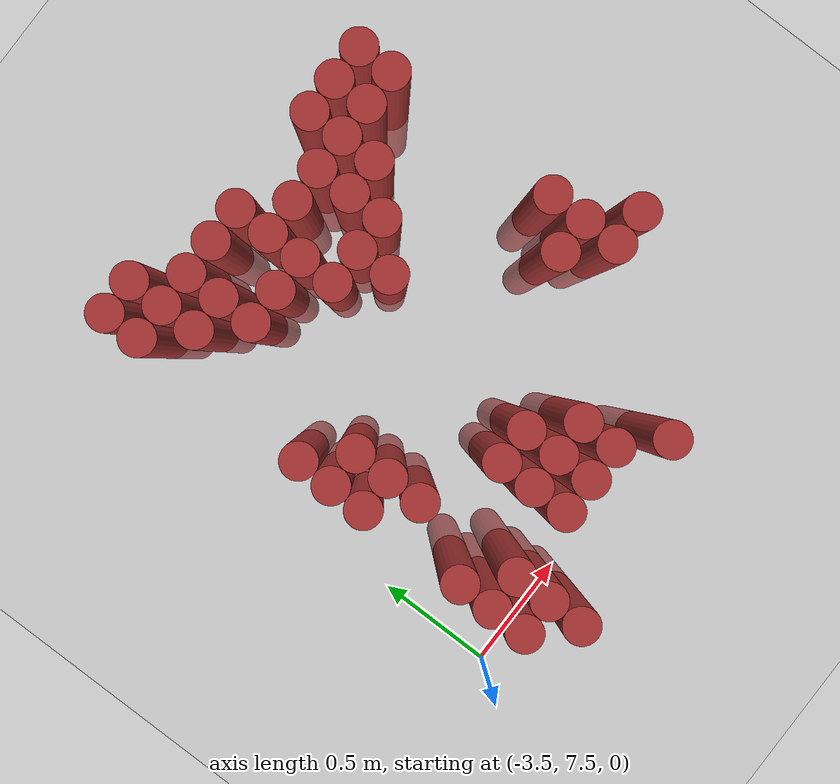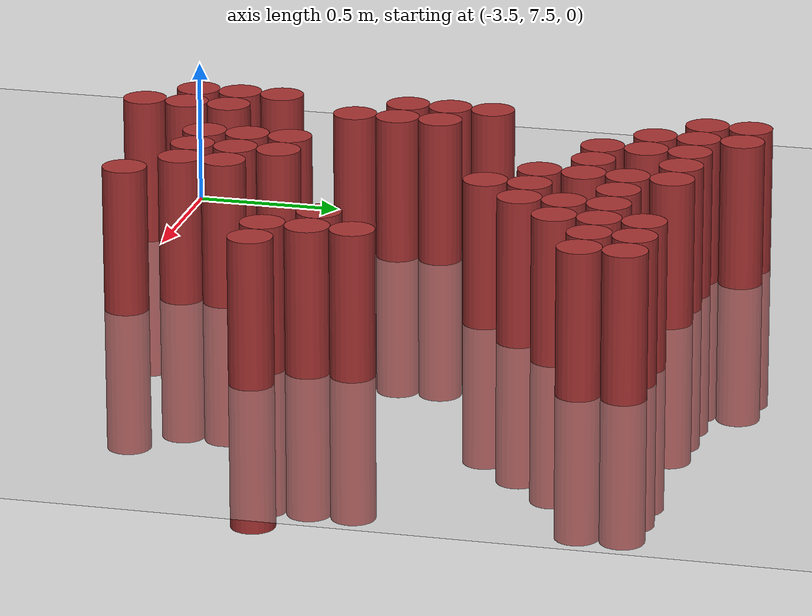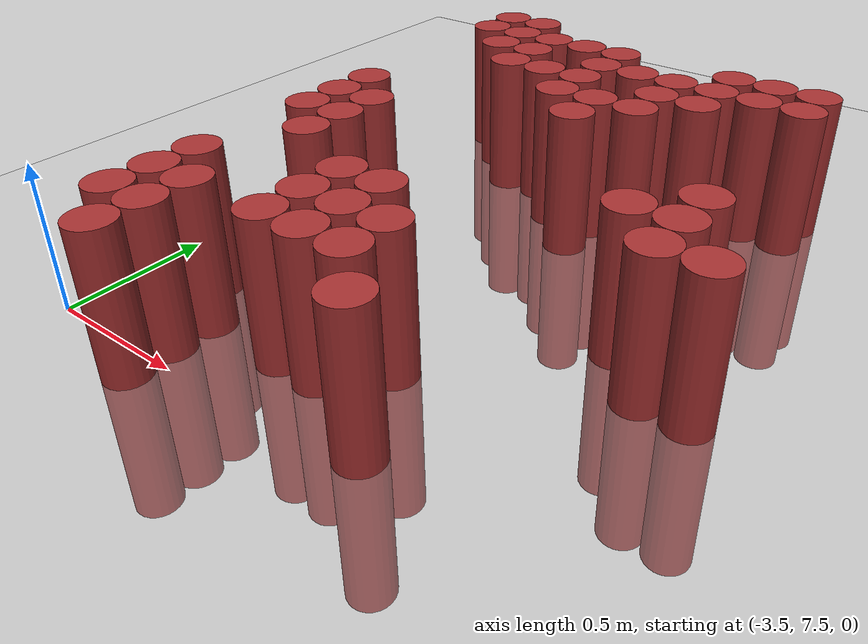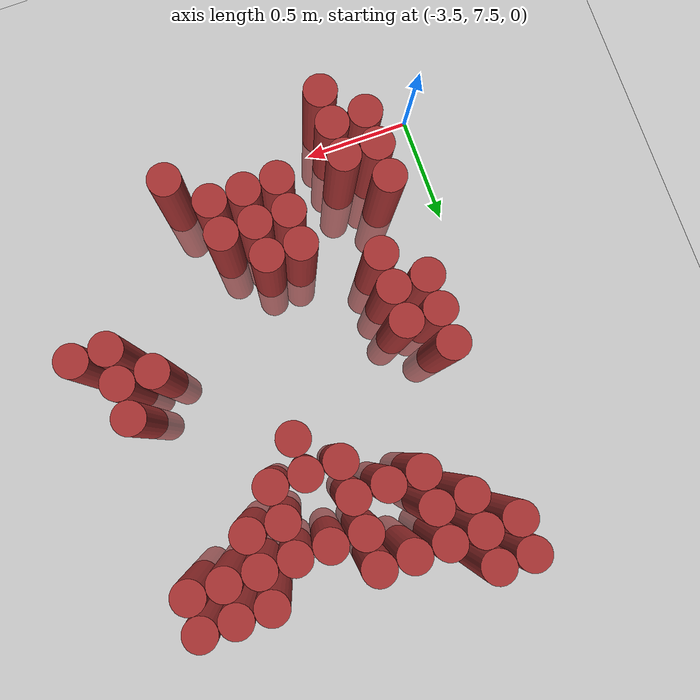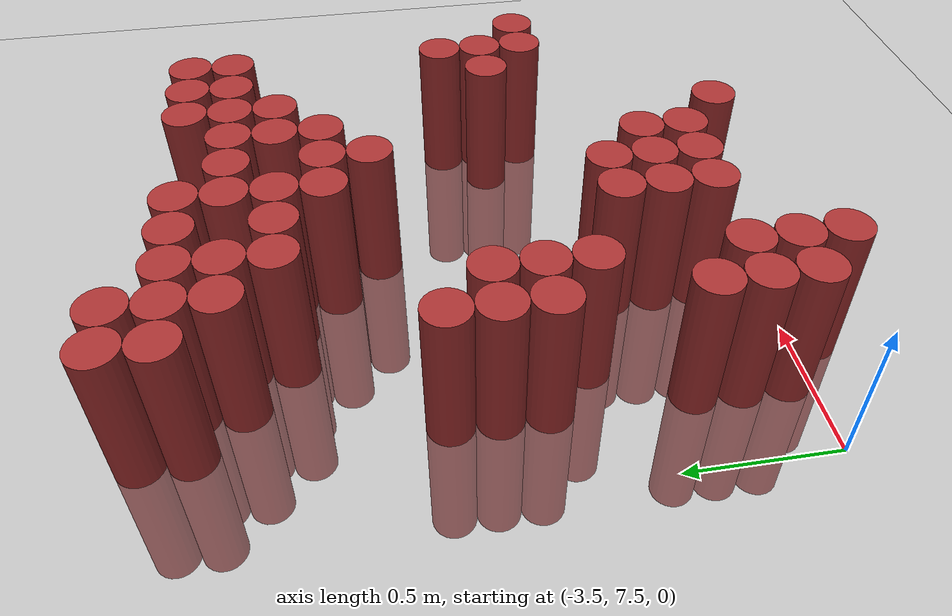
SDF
<sdf version="1.6">
 <world name="default">
  <model name="ground_plane">
   <static>1</static>
   <link name="link">
    <collision name="collision">
     <geometry><plane><normal>0 0 1</normal><size>100 100</size></plane></geometry>
     <surface><friction><ode><mu>100</mu><mu2>50</mu2></ode></friction></surface>
    </collision>
    <visual name="visual">
     <cast_shadows>0</cast_shadows>
     <geometry><plane><normal>0 0 1</normal><size>100 100</size></plane></geometry>
     <material>
      <script><uri>file://media/materials/scripts/gazebo.material</uri><name>Gazebo/Grey</name></script>
     </material>
    </visual>
   </link>
  </model>
  <model name="unit_cylinder_175">
   <static>1</static>
   <pose>-3.225000 7.575000 0.000000 0.000000 0.000000 0.000000</pose>
   <link name="link">
    <inertial>
     <mass>1</mass>
     <inertia><ixx>0.145833</ixx><ixy>0</ixy><ixz>0</ixz><iyy>0.145833</iyy><iyz>0</iyz><izz>0.125</izz></inertia>
    </inertial>
    <collision name="collision">
     <geometry><cylinder><radius>0.075000</radius><length>1</length></cylinder></geometry>
    </collision>
    <visual name="visual">
     <geometry><cylinder><radius>0.075000</radius><length>1</length></cylinder></geometry>
     <material>
      <ambient>0.648000 0.192000 0.192000 1</ambient>
      <diffuse>0.648000 0.192000 0.192000 1</diffuse>
     </material>
     <material>
      <script><name>Gazebo/Grey</name><uri>file://media/materials/scripts/gazebo.material</uri></script>
     </material>
    </visual>
   </link>
  </model>
  <model name="unit_cylinder_176">
   <static>1</static>
   <pose>-3.225000 7.725000 0.000000 0.000000 0.000000 0.000000</pose>
   <link name="link">
    <inertial>
     <mass>1</mass>
     <inertia><ixx>0.145833</ixx><ixy>0</ixy><ixz>0</ixz><iyy>0.145833</iyy><iyz>0</iyz><izz>0.125</izz></inertia>
    </inertial>
    <collision name="collision">
     <geometry><cylinder><radius>0.075000</radius><length>1</length></cylinder></geometry>
    </collision>
    <visual name="visual">
     <geometry><cylinder><radius>0.075000</radius><length>1</length></cylinder></geometry>
     <material>
      <ambient>0.648000 0.192000 0.192000 1</ambient>
      <diffuse>0.648000 0.192000 0.192000 1</diffuse>
     </material>
     <material>
      <script><name>Gazebo/Grey</name><uri>file://media/materials/scripts/gazebo.material</uri></script>
     </material>
    </visual>
   </link>
  </model>
  <model name="unit_cylinder_177">
   <static>1</static>
   <pose>-3.225000 7.875000 0.000000 0.000000 0.000000 0.000000</pose>
   <link name="link">
    <inertial>
     <mass>1</mass>
     <inertia><ixx>0.145833</ixx><ixy>0</ixy><ixz>0</ixz><iyy>0.145833</iyy><iyz>0</iyz><izz>0.125</izz></inertia>
    </inertial>
    <collision name="collision">
     <geometry><cylinder><radius>0.075000</radius><length>1</length></cylinder></geometry>
    </collision>
    <visual name="visual">
     <geometry><cylinder><radius>0.075000</radius><length>1</length></cylinder></geometry>
     <material>
      <ambient>0.648000 0.192000 0.192000 1</ambient>
      <diffuse>0.648000 0.192000 0.192000 1</diffuse>
     </material>
     <material>
      <script><name>Gazebo/Grey</name><uri>file://media/materials/scripts/gazebo.material</uri></script>
     </material>
    </visual>
   </link>
  </model>
  <model name="unit_cylinder_178">
   <static>1</static>
   <pose>-3.225000 8.325000 0.000000 0.000000 0.000000 0.000000</pose>
   <link name="link">
    <inertial>
     <mass>1</mass>
     <inertia><ixx>0.145833</ixx><ixy>0</ixy><ixz>0</ixz><iyy>0.145833</iyy><iyz>0</iyz><izz>0.125</izz></inertia>
    </inertial>
    <collision name="collision">
     <geometry><cylinder><radius>0.075000</radius><length>1</length></cylinder></geometry>
    </collision>
    <visual name="visual">
     <geometry><cylinder><radius>0.075000</radius><length>1</length></cylinder></geometry>
     <material>
      <ambient>0.648000 0.192000 0.192000 1</ambient>
      <diffuse>0.648000 0.192000 0.192000 1</diffuse>
     </material>
     <material>
      <script><name>Gazebo/Grey</name><uri>file://media/materials/scripts/gazebo.material</uri></script>
     </material>
    </visual>
   </link>
  </model>
  <model name="unit_cylinder_179">
   <static>1</static>
   <pose>-3.225000 8.475000 0.000000 0.000000 0.000000 0.000000</pose>
   <link name="link">
    <inertial>
     <mass>1</mass>
     <inertia><ixx>0.145833</ixx><ixy>0</ixy><ixz>0</ixz><iyy>0.145833</iyy><iyz>0</iyz><izz>0.125</izz></inertia>
    </inertial>
    <collision name="collision">
     <geometry><cylinder><radius>0.075000</radius><length>1</length></cylinder></geometry>
    </collision>
    <visual name="visual">
     <geometry><cylinder><radius>0.075000</radius><length>1</length></cylinder></geometry>
     <material>
      <ambient>0.648000 0.192000 0.192000 1</ambient>
      <diffuse>0.648000 0.192000 0.192000 1</diffuse>
     </material>
     <material>
      <script><name>Gazebo/Grey</name><uri>file://media/materials/scripts/gazebo.material</uri></script>
     </material>
    </visual>
   </link>
  </model>
  <model name="unit_cylinder_180">
   <static>1</static>
   <pose>-3.225000 8.625000 0.000000 0.000000 0.000000 0.000000</pose>
   <link name="link">
    <inertial>
     <mass>1</mass>
     <inertia><ixx>0.145833</ixx><ixy>0</ixy><ixz>0</ixz><iyy>0.145833</iyy><iyz>0</iyz><izz>0.125</izz></inertia>
    </inertial>
    <collision name="collision">
     <geometry><cylinder><radius>0.075000</radius><length>1</length></cylinder></geometry>
    </collision>
    <visual name="visual">
     <geometry><cylinder><radius>0.075000</radius><length>1</length></cylinder></geometry>
     <material>
      <ambient>0.648000 0.192000 0.192000 1</ambient>
      <diffuse>0.648000 0.192000 0.192000 1</diffuse>
     </material>
     <material>
      <script><name>Gazebo/Grey</name><uri>file://media/materials/scripts/gazebo.material</uri></script>
     </material>
    </visual>
   </link>
  </model>
  <model name="unit_cylinder_181">
   <static>1</static>
   <pose>-3.225000 9.375000 0.000000 0.000000 0.000000 0.000000</pose>
   <link name="link">
    <inertial>
     <mass>1</mass>
     <inertia><ixx>0.145833</ixx><ixy>0</ixy><ixz>0</ixz><iyy>0.145833</iyy><iyz>0</iyz><izz>0.125</izz></inertia>
    </inertial>
    <collision name="collision">
     <geometry><cylinder><radius>0.075000</radius><length>1</length></cylinder></geometry>
    </collision>
    <visual name="visual">
     <geometry><cylinder><radius>0.075000</radius><length>1</length></cylinder></geometry>
     <material>
      <ambient>0.648000 0.192000 0.192000 1</ambient>
      <diffuse>0.648000 0.192000 0.192000 1</diffuse>
     </material>
     <material>
      <script><name>Gazebo/Grey</name><uri>file://media/materials/scripts/gazebo.material</uri></script>
     </material>
    </visual>
   </link>
  </model>
  <model name="unit_cylinder_182">
   <static>1</static>
   <pose>-3.225000 9.525000 0.000000 0.000000 0.000000 0.000000</pose>
   <link name="link">
    <inertial>
     <mass>1</mass>
     <inertia><ixx>0.145833</ixx><ixy>0</ixy><ixz>0</ixz><iyy>0.145833</iyy><iyz>0</iyz><izz>0.125</izz></inertia>
    </inertial>
    <collision name="collision">
     <geometry><cylinder><radius>0.075000</radius><length>1</length></cylinder></geometry>
    </collision>
    <visual name="visual">
     <geometry><cylinder><radius>0.075000</radius><length>1</length></cylinder></geometry>
     <material>
      <ambient>0.648000 0.192000 0.192000 1</ambient>
      <diffuse>0.648000 0.192000 0.192000 1</diffuse>
     </material>
     <material>
      <script><name>Gazebo/Grey</name><uri>file://media/materials/scripts/gazebo.material</uri></script>
     </material>
    </visual>
   </link>
  </model>
  <model name="unit_cylinder_186">
   <static>1</static>
   <pose>-3.075000 7.425000 0.000000 0.000000 0.000000 0.000000</pose>
   <link name="link">
    <inertial>
     <mass>1</mass>
     <inertia><ixx>0.145833</ixx><ixy>0</ixy><ixz>0</ixz><iyy>0.145833</iyy><iyz>0</iyz><izz>0.125</izz></inertia>
    </inertial>
    <collision name="collision">
     <geometry><cylinder><radius>0.075000</radius><length>1</length></cylinder></geometry>
    </collision>
    <visual name="visual">
     <geometry><cylinder><radius>0.075000</radius><length>1</length></cylinder></geometry>
     <material>
      <ambient>0.648000 0.192000 0.192000 1</ambient>
      <diffuse>0.648000 0.192000 0.192000 1</diffuse>
     </material>
     <material>
      <script><name>Gazebo/Grey</name><uri>file://media/materials/scripts/gazebo.material</uri></script>
     </material>
    </visual>
   </link>
  </model>
  <model name="unit_cylinder_187">
   <static>1</static>
   <pose>-3.075000 7.575000 0.000000 0.000000 0.000000 0.000000</pose>
   <link name="link">
    <inertial>
     <mass>1</mass>
     <inertia><ixx>0.145833</ixx><ixy>0</ixy><ixz>0</ixz><iyy>0.145833</iyy><iyz>0</iyz><izz>0.125</izz></inertia>
    </inertial>
    <collision name="collision">
     <geometry><cylinder><radius>0.075000</radius><length>1</length></cylinder></geometry>
    </collision>
    <visual name="visual">
     <geometry><cylinder><radius>0.075000</radius><length>1</length></cylinder></geometry>
     <material>
      <ambient>0.648000 0.192000 0.192000 1</ambient>
      <diffuse>0.648000 0.192000 0.192000 1</diffuse>
     </material>
     <material>
      <script><name>Gazebo/Grey</name><uri>file://media/materials/scripts/gazebo.material</uri></script>
     </material>
    </visual>
   </link>
  </model>
  <model name="unit_cylinder_188">
   <static>1</static>
   <pose>-3.075000 7.725000 0.000000 0.000000 0.000000 0.000000</pose>
   <link name="link">
    <inertial>
     <mass>1</mass>
     <inertia><ixx>0.145833</ixx><ixy>0</ixy><ixz>0</ixz><iyy>0.145833</iyy><iyz>0</iyz><izz>0.125</izz></inertia>
    </inertial>
    <collision name="collision">
     <geometry><cylinder><radius>0.075000</radius><length>1</length></cylinder></geometry>
    </collision>
    <visual name="visual">
     <geometry><cylinder><radius>0.075000</radius><length>1</length></cylinder></geometry>
     <material>
      <ambient>0.648000 0.192000 0.192000 1</ambient>
      <diffuse>0.648000 0.192000 0.192000 1</diffuse>
     </material>
     <material>
      <script><name>Gazebo/Grey</name><uri>file://media/materials/scripts/gazebo.material</uri></script>
     </material>
    </visual>
   </link>
  </model>
  <model name="unit_cylinder_189">
   <static>1</static>
   <pose>-3.075000 8.175000 0.000000 0.000000 0.000000 0.000000</pose>
   <link name="link">
    <inertial>
     <mass>1</mass>
     <inertia><ixx>0.145833</ixx><ixy>0</ixy><ixz>0</ixz><iyy>0.145833</iyy><iyz>0</iyz><izz>0.125</izz></inertia>
    </inertial>
    <collision name="collision">
     <geometry><cylinder><radius>0.075000</radius><length>1</length></cylinder></geometry>
    </collision>
    <visual name="visual">
     <geometry><cylinder><radius>0.075000</radius><length>1</length></cylinder></geometry>
     <material>
      <ambient>0.648000 0.192000 0.192000 1</ambient>
      <diffuse>0.648000 0.192000 0.192000 1</diffuse>
     </material>
     <material>
      <script><name>Gazebo/Grey</name><uri>file://media/materials/scripts/gazebo.material</uri></script>
     </material>
    </visual>
   </link>
  </model>
  <model name="unit_cylinder_190">
   <static>1</static>
   <pose>-3.075000 8.325000 0.000000 0.000000 0.000000 0.000000</pose>
   <link name="link">
    <inertial>
     <mass>1</mass>
     <inertia><ixx>0.145833</ixx><ixy>0</ixy><ixz>0</ixz><iyy>0.145833</iyy><iyz>0</iyz><izz>0.125</izz></inertia>
    </inertial>
    <collision name="collision">
     <geometry><cylinder><radius>0.075000</radius><length>1</length></cylinder></geometry>
    </collision>
    <visual name="visual">
     <geometry><cylinder><radius>0.075000</radius><length>1</length></cylinder></geometry>
     <material>
      <ambient>0.648000 0.192000 0.192000 1</ambient>
      <diffuse>0.648000 0.192000 0.192000 1</diffuse>
     </material>
     <material>
      <script><name>Gazebo/Grey</name><uri>file://media/materials/scripts/gazebo.material</uri></script>
     </material>
    </visual>
   </link>
  </model>
  <model name="unit_cylinder_191">
   <static>1</static>
   <pose>-3.075000 8.475000 0.000000 0.000000 0.000000 0.000000</pose>
   <link name="link">
    <inertial>
     <mass>1</mass>
     <inertia><ixx>0.145833</ixx><ixy>0</ixy><ixz>0</ixz><iyy>0.145833</iyy><iyz>0</iyz><izz>0.125</izz></inertia>
    </inertial>
    <collision name="collision">
     <geometry><cylinder><radius>0.075000</radius><length>1</length></cylinder></geometry>
    </collision>
    <visual name="visual">
     <geometry><cylinder><radius>0.075000</radius><length>1</length></cylinder></geometry>
     <material>
      <ambient>0.648000 0.192000 0.192000 1</ambient>
      <diffuse>0.648000 0.192000 0.192000 1</diffuse>
     </material>
     <material>
      <script><name>Gazebo/Grey</name><uri>file://media/materials/scripts/gazebo.material</uri></script>
     </material>
    </visual>
   </link>
  </model>
  <model name="unit_cylinder_192">
   <static>1</static>
   <pose>-3.075000 9.225000 0.000000 0.000000 0.000000 0.000000</pose>
   <link name="link">
    <inertial>
     <mass>1</mass>
     <inertia><ixx>0.145833</ixx><ixy>0</ixy><ixz>0</ixz><iyy>0.145833</iyy><iyz>0</iyz><izz>0.125</izz></inertia>
    </inertial>
    <collision name="collision">
     <geometry><cylinder><radius>0.075000</radius><length>1</length></cylinder></geometry>
    </collision>
    <visual name="visual">
     <geometry><cylinder><radius>0.075000</radius><length>1</length></cylinder></geometry>
     <material>
      <ambient>0.648000 0.192000 0.192000 1</ambient>
      <diffuse>0.648000 0.192000 0.192000 1</diffuse>
     </material>
     <material>
      <script><name>Gazebo/Grey</name><uri>file://media/materials/scripts/gazebo.material</uri></script>
     </material>
    </visual>
   </link>
  </model>
  <model name="unit_cylinder_193">
   <static>1</static>
   <pose>-3.075000 9.375000 0.000000 0.000000 0.000000 0.000000</pose>
   <link name="link">
    <inertial>
     <mass>1</mass>
     <inertia><ixx>0.145833</ixx><ixy>0</ixy><ixz>0</ixz><iyy>0.145833</iyy><iyz>0</iyz><izz>0.125</izz></inertia>
    </inertial>
    <collision name="collision">
     <geometry><cylinder><radius>0.075000</radius><length>1</length></cylinder></geometry>
    </collision>
    <visual name="visual">
     <geometry><cylinder><radius>0.075000</radius><length>1</length></cylinder></geometry>
     <material>
      <ambient>0.648000 0.192000 0.192000 1</ambient>
      <diffuse>0.648000 0.192000 0.192000 1</diffuse>
     </material>
     <material>
      <script><name>Gazebo/Grey</name><uri>file://media/materials/scripts/gazebo.material</uri></script>
     </material>
    </visual>
   </link>
  </model>
  <model name="unit_cylinder_194">
   <static>1</static>
   <pose>-3.075000 9.525000 0.000000 0.000000 0.000000 0.000000</pose>
   <link name="link">
    <inertial>
     <mass>1</mass>
     <inertia><ixx>0.145833</ixx><ixy>0</ixy><ixz>0</ixz><iyy>0.145833</iyy><iyz>0</iyz><izz>0.125</izz></inertia>
    </inertial>
    <collision name="collision">
     <geometry><cylinder><radius>0.075000</radius><length>1</length></cylinder></geometry>
    </collision>
    <visual name="visual">
     <geometry><cylinder><radius>0.075000</radius><length>1</length></cylinder></geometry>
     <material>
      <ambient>0.648000 0.192000 0.192000 1</ambient>
      <diffuse>0.648000 0.192000 0.192000 1</diffuse>
     </material>
     <material>
      <script><name>Gazebo/Grey</name><uri>file://media/materials/scripts/gazebo.material</uri></script>
     </material>
    </visual>
   </link>
  </model>
  <model name="unit_cylinder_199">
   <static>1</static>
   <pose>-2.925000 9.075000 0.000000 0.000000 0.000000 0.000000</pose>
   <link name="link">
    <inertial>
     <mass>1</mass>
     <inertia><ixx>0.145833</ixx><ixy>0</ixy><ixz>0</ixz><iyy>0.145833</iyy><iyz>0</iyz><izz>0.125</izz></inertia>
    </inertial>
    <collision name="collision">
     <geometry><cylinder><radius>0.075000</radius><length>1</length></cylinder></geometry>
    </collision>
    <visual name="visual">
     <geometry><cylinder><radius>0.075000</radius><length>1</length></cylinder></geometry>
     <material>
      <ambient>0.648000 0.192000 0.192000 1</ambient>
      <diffuse>0.648000 0.192000 0.192000 1</diffuse>
     </material>
     <material>
      <script><name>Gazebo/Grey</name><uri>file://media/materials/scripts/gazebo.material</uri></script>
     </material>
    </visual>
   </link>
  </model>
  <model name="unit_cylinder_200">
   <static>1</static>
   <pose>-2.925000 9.225000 0.000000 0.000000 0.000000 0.000000</pose>
   <link name="link">
    <inertial>
     <mass>1</mass>
     <inertia><ixx>0.145833</ixx><ixy>0</ixy><ixz>0</ixz><iyy>0.145833</iyy><iyz>0</iyz><izz>0.125</izz></inertia>
    </inertial>
    <collision name="collision">
     <geometry><cylinder><radius>0.075000</radius><length>1</length></cylinder></geometry>
    </collision>
    <visual name="visual">
     <geometry><cylinder><radius>0.075000</radius><length>1</length></cylinder></geometry>
     <material>
      <ambient>0.648000 0.192000 0.192000 1</ambient>
      <diffuse>0.648000 0.192000 0.192000 1</diffuse>
     </material>
     <material>
      <script><name>Gazebo/Grey</name><uri>file://media/materials/scripts/gazebo.material</uri></script>
     </material>
    </visual>
   </link>
  </model>
  <model name="unit_cylinder_201">
   <static>1</static>
   <pose>-2.925000 9.375000 0.000000 0.000000 0.000000 0.000000</pose>
   <link name="link">
    <inertial>
     <mass>1</mass>
     <inertia><ixx>0.145833</ixx><ixy>0</ixy><ixz>0</ixz><iyy>0.145833</iyy><iyz>0</iyz><izz>0.125</izz></inertia>
    </inertial>
    <collision name="collision">
     <geometry><cylinder><radius>0.075000</radius><length>1</length></cylinder></geometry>
    </collision>
    <visual name="visual">
     <geometry><cylinder><radius>0.075000</radius><length>1</length></cylinder></geometry>
     <material>
      <ambient>0.648000 0.192000 0.192000 1</ambient>
      <diffuse>0.648000 0.192000 0.192000 1</diffuse>
     </material>
     <material>
      <script><name>Gazebo/Grey</name><uri>file://media/materials/scripts/gazebo.material</uri></script>
     </material>
    </visual>
   </link>
  </model>
  <model name="unit_cylinder_205">
   <static>1</static>
   <pose>-2.775000 7.725000 0.000000 0.000000 0.000000 0.000000</pose>
   <link name="link">
    <inertial>
     <mass>1</mass>
     <inertia><ixx>0.145833</ixx><ixy>0</ixy><ixz>0</ixz><iyy>0.145833</iyy><iyz>0</iyz><izz>0.125</izz></inertia>
    </inertial>
    <collision name="collision">
     <geometry><cylinder><radius>0.075000</radius><length>1</length></cylinder></geometry>
    </collision>
    <visual name="visual">
     <geometry><cylinder><radius>0.075000</radius><length>1</length></cylinder></geometry>
     <material>
      <ambient>0.648000 0.192000 0.192000 1</ambient>
      <diffuse>0.648000 0.192000 0.192000 1</diffuse>
     </material>
     <material>
      <script><name>Gazebo/Grey</name><uri>file://media/materials/scripts/gazebo.material</uri></script>
     </material>
    </visual>
   </link>
  </model>
  <model name="unit_cylinder_206">
   <static>1</static>
   <pose>-2.775000 7.875000 0.000000 0.000000 0.000000 0.000000</pose>
   <link name="link">
    <inertial>
     <mass>1</mass>
     <inertia><ixx>0.145833</ixx><ixy>0</ixy><ixz>0</ixz><iyy>0.145833</iyy><iyz>0</iyz><izz>0.125</izz></inertia>
    </inertial>
    <collision name="collision">
     <geometry><cylinder><radius>0.075000</radius><length>1</length></cylinder></geometry>
    </collision>
    <visual name="visual">
     <geometry><cylinder><radius>0.075000</radius><length>1</length></cylinder></geometry>
     <material>
      <ambient>0.648000 0.192000 0.192000 1</ambient>
      <diffuse>0.648000 0.192000 0.192000 1</diffuse>
     </material>
     <material>
      <script><name>Gazebo/Grey</name><uri>file://media/materials/scripts/gazebo.material</uri></script>
     </material>
    </visual>
   </link>
  </model>
  <model name="unit_cylinder_207">
   <static>1</static>
   <pose>-2.775000 8.025000 0.000000 0.000000 0.000000 0.000000</pose>
   <link name="link">
    <inertial>
     <mass>1</mass>
     <inertia><ixx>0.145833</ixx><ixy>0</ixy><ixz>0</ixz><iyy>0.145833</iyy><iyz>0</iyz><izz>0.125</izz></inertia>
    </inertial>
    <collision name="collision">
     <geometry><cylinder><radius>0.075000</radius><length>1</length></cylinder></geometry>
    </collision>
    <visual name="visual">
     <geometry><cylinder><radius>0.075000</radius><length>1</length></cylinder></geometry>
     <material>
      <ambient>0.648000 0.192000 0.192000 1</ambient>
      <diffuse>0.648000 0.192000 0.192000 1</diffuse>
     </material>
     <material>
      <script><name>Gazebo/Grey</name><uri>file://media/materials/scripts/gazebo.material</uri></script>
     </material>
    </visual>
   </link>
  </model>
  <model name="unit_cylinder_208">
   <static>1</static>
   <pose>-2.775000 9.075000 0.000000 0.000000 0.000000 0.000000</pose>
   <link name="link">
    <inertial>
     <mass>1</mass>
     <inertia><ixx>0.145833</ixx><ixy>0</ixy><ixz>0</ixz><iyy>0.145833</iyy><iyz>0</iyz><izz>0.125</izz></inertia>
    </inertial>
    <collision name="collision">
     <geometry><cylinder><radius>0.075000</radius><length>1</length></cylinder></geometry>
    </collision>
    <visual name="visual">
     <geometry><cylinder><radius>0.075000</radius><length>1</length></cylinder></geometry>
     <material>
      <ambient>0.648000 0.192000 0.192000 1</ambient>
      <diffuse>0.648000 0.192000 0.192000 1</diffuse>
     </material>
     <material>
      <script><name>Gazebo/Grey</name><uri>file://media/materials/scripts/gazebo.material</uri></script>
     </material>
    </visual>
   </link>
  </model>
  <model name="unit_cylinder_209">
   <static>1</static>
   <pose>-2.775000 9.375000 0.000000 0.000000 0.000000 0.000000</pose>
   <link name="link">
    <inertial>
     <mass>1</mass>
     <inertia><ixx>0.145833</ixx><ixy>0</ixy><ixz>0</ixz><iyy>0.145833</iyy><iyz>0</iyz><izz>0.125</izz></inertia>
    </inertial>
    <collision name="collision">
     <geometry><cylinder><radius>0.075000</radius><length>1</length></cylinder></geometry>
    </collision>
    <visual name="visual">
     <geometry><cylinder><radius>0.075000</radius><length>1</length></cylinder></geometry>
     <material>
      <ambient>0.648000 0.192000 0.192000 1</ambient>
      <diffuse>0.648000 0.192000 0.192000 1</diffuse>
     </material>
     <material>
      <script><name>Gazebo/Grey</name><uri>file://media/materials/scripts/gazebo.material</uri></script>
     </material>
    </visual>
   </link>
  </model>
  <model name="unit_cylinder_211">
   <static>1</static>
   <pose>-2.625000 7.725000 0.000000 0.000000 0.000000 0.000000</pose>
   <link name="link">
    <inertial>
     <mass>1</mass>
     <inertia><ixx>0.145833</ixx><ixy>0</ixy><ixz>0</ixz><iyy>0.145833</iyy><iyz>0</iyz><izz>0.125</izz></inertia>
    </inertial>
    <collision name="collision">
     <geometry><cylinder><radius>0.075000</radius><length>1</length></cylinder></geometry>
    </collision>
    <visual name="visual">
     <geometry><cylinder><radius>0.075000</radius><length>1</length></cylinder></geometry>
     <material>
      <ambient>0.648000 0.192000 0.192000 1</ambient>
      <diffuse>0.648000 0.192000 0.192000 1</diffuse>
     </material>
     <material>
      <script><name>Gazebo/Grey</name><uri>file://media/materials/scripts/gazebo.material</uri></script>
     </material>
    </visual>
   </link>
  </model>
  <model name="unit_cylinder_212">
   <static>1</static>
   <pose>-2.625000 7.875000 0.000000 0.000000 0.000000 0.000000</pose>
   <link name="link">
    <inertial>
     <mass>1</mass>
     <inertia><ixx>0.145833</ixx><ixy>0</ixy><ixz>0</ixz><iyy>0.145833</iyy><iyz>0</iyz><izz>0.125</izz></inertia>
    </inertial>
    <collision name="collision">
     <geometry><cylinder><radius>0.075000</radius><length>1</length></cylinder></geometry>
    </collision>
    <visual name="visual">
     <geometry><cylinder><radius>0.075000</radius><length>1</length></cylinder></geometry>
     <material>
      <ambient>0.648000 0.192000 0.192000 1</ambient>
      <diffuse>0.648000 0.192000 0.192000 1</diffuse>
     </material>
     <material>
      <script><name>Gazebo/Grey</name><uri>file://media/materials/scripts/gazebo.material</uri></script>
     </material>
    </visual>
   </link>
  </model>
  <model name="unit_cylinder_213">
   <static>1</static>
   <pose>-2.625000 8.025000 0.000000 0.000000 0.000000 0.000000</pose>
   <link name="link">
    <inertial>
     <mass>1</mass>
     <inertia><ixx>0.145833</ixx><ixy>0</ixy><ixz>0</ixz><iyy>0.145833</iyy><iyz>0</iyz><izz>0.125</izz></inertia>
    </inertial>
    <collision name="collision">
     <geometry><cylinder><radius>0.075000</radius><length>1</length></cylinder></geometry>
    </collision>
    <visual name="visual">
     <geometry><cylinder><radius>0.075000</radius><length>1</length></cylinder></geometry>
     <material>
      <ambient>0.648000 0.192000 0.192000 1</ambient>
      <diffuse>0.648000 0.192000 0.192000 1</diffuse>
     </material>
     <material>
      <script><name>Gazebo/Grey</name><uri>file://media/materials/scripts/gazebo.material</uri></script>
     </material>
    </visual>
   </link>
  </model>
  <model name="unit_cylinder_214">
   <static>1</static>
   <pose>-2.625000 8.925000 0.000000 0.000000 0.000000 0.000000</pose>
   <link name="link">
    <inertial>
     <mass>1</mass>
     <inertia><ixx>0.145833</ixx><ixy>0</ixy><ixz>0</ixz><iyy>0.145833</iyy><iyz>0</iyz><izz>0.125</izz></inertia>
    </inertial>
    <collision name="collision">
     <geometry><cylinder><radius>0.075000</radius><length>1</length></cylinder></geometry>
    </collision>
    <visual name="visual">
     <geometry><cylinder><radius>0.075000</radius><length>1</length></cylinder></geometry>
     <material>
      <ambient>0.648000 0.192000 0.192000 1</ambient>
      <diffuse>0.648000 0.192000 0.192000 1</diffuse>
     </material>
     <material>
      <script><name>Gazebo/Grey</name><uri>file://media/materials/scripts/gazebo.material</uri></script>
     </material>
    </visual>
   </link>
  </model>
  <model name="unit_cylinder_215">
   <static>1</static>
   <pose>-2.625000 9.075000 0.000000 0.000000 0.000000 0.000000</pose>
   <link name="link">
    <inertial>
     <mass>1</mass>
     <inertia><ixx>0.145833</ixx><ixy>0</ixy><ixz>0</ixz><iyy>0.145833</iyy><iyz>0</iyz><izz>0.125</izz></inertia>
    </inertial>
    <collision name="collision">
     <geometry><cylinder><radius>0.075000</radius><length>1</length></cylinder></geometry>
    </collision>
    <visual name="visual">
     <geometry><cylinder><radius>0.075000</radius><length>1</length></cylinder></geometry>
     <material>
      <ambient>0.648000 0.192000 0.192000 1</ambient>
      <diffuse>0.648000 0.192000 0.192000 1</diffuse>
     </material>
     <material>
      <script><name>Gazebo/Grey</name><uri>file://media/materials/scripts/gazebo.material</uri></script>
     </material>
    </visual>
   </link>
  </model>
  <model name="unit_cylinder_216">
   <static>1</static>
   <pose>-2.625000 9.225000 0.000000 0.000000 0.000000 0.000000</pose>
   <link name="link">
    <inertial>
     <mass>1</mass>
     <inertia><ixx>0.145833</ixx><ixy>0</ixy><ixz>0</ixz><iyy>0.145833</iyy><iyz>0</iyz><izz>0.125</izz></inertia>
    </inertial>
    <collision name="collision">
     <geometry><cylinder><radius>0.075000</radius><length>1</length></cylinder></geometry>
    </collision>
    <visual name="visual">
     <geometry><cylinder><radius>0.075000</radius><length>1</length></cylinder></geometry>
     <material>
      <ambient>0.648000 0.192000 0.192000 1</ambient>
      <diffuse>0.648000 0.192000 0.192000 1</diffuse>
     </material>
     <material>
      <script><name>Gazebo/Grey</name><uri>file://media/materials/scripts/gazebo.material</uri></script>
     </material>
    </visual>
   </link>
  </model>
  <model name="unit_cylinder_217">
   <static>1</static>
   <pose>-2.625000 9.375000 0.000000 0.000000 0.000000 0.000000</pose>
   <link name="link">
    <inertial>
     <mass>1</mass>
     <inertia><ixx>0.145833</ixx><ixy>0</ixy><ixz>0</ixz><iyy>0.145833</iyy><iyz>0</iyz><izz>0.125</izz></inertia>
    </inertial>
    <collision name="collision">
     <geometry><cylinder><radius>0.075000</radius><length>1</length></cylinder></geometry>
    </collision>
    <visual name="visual">
     <geometry><cylinder><radius>0.075000</radius><length>1</length></cylinder></geometry>
     <material>
      <ambient>0.648000 0.192000 0.192000 1</ambient>
      <diffuse>0.648000 0.192000 0.192000 1</diffuse>
     </material>
     <material>
      <script><name>Gazebo/Grey</name><uri>file://media/materials/scripts/gazebo.material</uri></script>
     </material>
    </visual>
   </link>
  </model>
  <model name="unit_cylinder_218">
   <static>1</static>
   <pose>-2.475000 7.725000 0.000000 0.000000 0.000000 0.000000</pose>
   <link name="link">
    <inertial>
     <mass>1</mass>
     <inertia><ixx>0.145833</ixx><ixy>0</ixy><ixz>0</ixz><iyy>0.145833</iyy><iyz>0</iyz><izz>0.125</izz></inertia>
    </inertial>
    <collision name="collision">
     <geometry><cylinder><radius>0.075000</radius><length>1</length></cylinder></geometry>
    </collision>
    <visual name="visual">
     <geometry><cylinder><radius>0.075000</radius><length>1</length></cylinder></geometry>
     <material>
      <ambient>0.648000 0.192000 0.192000 1</ambient>
      <diffuse>0.648000 0.192000 0.192000 1</diffuse>
     </material>
     <material>
      <script><name>Gazebo/Grey</name><uri>file://media/materials/scripts/gazebo.material</uri></script>
     </material>
    </visual>
   </link>
  </model>
  <model name="unit_cylinder_219">
   <static>1</static>
   <pose>-2.475000 7.875000 0.000000 0.000000 0.000000 0.000000</pose>
   <link name="link">
    <inertial>
     <mass>1</mass>
     <inertia><ixx>0.145833</ixx><ixy>0</ixy><ixz>0</ixz><iyy>0.145833</iyy><iyz>0</iyz><izz>0.125</izz></inertia>
    </inertial>
    <collision name="collision">
     <geometry><cylinder><radius>0.075000</radius><length>1</length></cylinder></geometry>
    </collision>
    <visual name="visual">
     <geometry><cylinder><radius>0.075000</radius><length>1</length></cylinder></geometry>
     <material>
      <ambient>0.648000 0.192000 0.192000 1</ambient>
      <diffuse>0.648000 0.192000 0.192000 1</diffuse>
     </material>
     <material>
      <script><name>Gazebo/Grey</name><uri>file://media/materials/scripts/gazebo.material</uri></script>
     </material>
    </visual>
   </link>
  </model>
  <model name="unit_cylinder_220">
   <static>1</static>
   <pose>-2.475000 8.775000 0.000000 0.000000 0.000000 0.000000</pose>
   <link name="link">
    <inertial>
     <mass>1</mass>
     <inertia><ixx>0.145833</ixx><ixy>0</ixy><ixz>0</ixz><iyy>0.145833</iyy><iyz>0</iyz><izz>0.125</izz></inertia>
    </inertial>
    <collision name="collision">
     <geometry><cylinder><radius>0.075000</radius><length>1</length></cylinder></geometry>
    </collision>
    <visual name="visual">
     <geometry><cylinder><radius>0.075000</radius><length>1</length></cylinder></geometry>
     <material>
      <ambient>0.648000 0.192000 0.192000 1</ambient>
      <diffuse>0.648000 0.192000 0.192000 1</diffuse>
     </material>
     <material>
      <script><name>Gazebo/Grey</name><uri>file://media/materials/scripts/gazebo.material</uri></script>
     </material>
    </visual>
   </link>
  </model>
  <model name="unit_cylinder_221">
   <static>1</static>
   <pose>-2.475000 8.925000 0.000000 0.000000 0.000000 0.000000</pose>
   <link name="link">
    <inertial>
     <mass>1</mass>
     <inertia><ixx>0.145833</ixx><ixy>0</ixy><ixz>0</ixz><iyy>0.145833</iyy><iyz>0</iyz><izz>0.125</izz></inertia>
    </inertial>
    <collision name="collision">
     <geometry><cylinder><radius>0.075000</radius><length>1</length></cylinder></geometry>
    </collision>
    <visual name="visual">
     <geometry><cylinder><radius>0.075000</radius><length>1</length></cylinder></geometry>
     <material>
      <ambient>0.648000 0.192000 0.192000 1</ambient>
      <diffuse>0.648000 0.192000 0.192000 1</diffuse>
     </material>
     <material>
      <script><name>Gazebo/Grey</name><uri>file://media/materials/scripts/gazebo.material</uri></script>
     </material>
    </visual>
   </link>
  </model>
  <model name="unit_cylinder_222">
   <static>1</static>
   <pose>-2.475000 9.225000 0.000000 0.000000 0.000000 0.000000</pose>
   <link name="link">
    <inertial>
     <mass>1</mass>
     <inertia><ixx>0.145833</ixx><ixy>0</ixy><ixz>0</ixz><iyy>0.145833</iyy><iyz>0</iyz><izz>0.125</izz></inertia>
    </inertial>
    <collision name="collision">
     <geometry><cylinder><radius>0.075000</radius><length>1</length></cylinder></geometry>
    </collision>
    <visual name="visual">
     <geometry><cylinder><radius>0.075000</radius><length>1</length></cylinder></geometry>
     <material>
      <ambient>0.648000 0.192000 0.192000 1</ambient>
      <diffuse>0.648000 0.192000 0.192000 1</diffuse>
     </material>
     <material>
      <script><name>Gazebo/Grey</name><uri>file://media/materials/scripts/gazebo.material</uri></script>
     </material>
    </visual>
   </link>
  </model>
  <model name="unit_cylinder_223">
   <static>1</static>
   <pose>-2.325000 7.575000 0.000000 0.000000 0.000000 0.000000</pose>
   <link name="link">
    <inertial>
     <mass>1</mass>
     <inertia><ixx>0.145833</ixx><ixy>0</ixy><ixz>0</ixz><iyy>0.145833</iyy><iyz>0</iyz><izz>0.125</izz></inertia>
    </inertial>
    <collision name="collision">
     <geometry><cylinder><radius>0.075000</radius><length>1</length></cylinder></geometry>
    </collision>
    <visual name="visual">
     <geometry><cylinder><radius>0.075000</radius><length>1</length></cylinder></geometry>
     <material>
      <ambient>0.648000 0.192000 0.192000 1</ambient>
      <diffuse>0.648000 0.192000 0.192000 1</diffuse>
     </material>
     <material>
      <script><name>Gazebo/Grey</name><uri>file://media/materials/scripts/gazebo.material</uri></script>
     </material>
    </visual>
   </link>
  </model>
  <model name="unit_cylinder_224">
   <static>1</static>
   <pose>-2.325000 8.925000 0.000000 0.000000 0.000000 0.000000</pose>
   <link name="link">
    <inertial>
     <mass>1</mass>
     <inertia><ixx>0.145833</ixx><ixy>0</ixy><ixz>0</ixz><iyy>0.145833</iyy><iyz>0</iyz><izz>0.125</izz></inertia>
    </inertial>
    <collision name="collision">
     <geometry><cylinder><radius>0.075000</radius><length>1</length></cylinder></geometry>
    </collision>
    <visual name="visual">
     <geometry><cylinder><radius>0.075000</radius><length>1</length></cylinder></geometry>
     <material>
      <ambient>0.648000 0.192000 0.192000 1</ambient>
      <diffuse>0.648000 0.192000 0.192000 1</diffuse>
     </material>
     <material>
      <script><name>Gazebo/Grey</name><uri>file://media/materials/scripts/gazebo.material</uri></script>
     </material>
    </visual>
   </link>
  </model>
  <model name="unit_cylinder_225">
   <static>1</static>
   <pose>-2.325000 9.075000 0.000000 0.000000 0.000000 0.000000</pose>
   <link name="link">
    <inertial>
     <mass>1</mass>
     <inertia><ixx>0.145833</ixx><ixy>0</ixy><ixz>0</ixz><iyy>0.145833</iyy><iyz>0</iyz><izz>0.125</izz></inertia>
    </inertial>
    <collision name="collision">
     <geometry><cylinder><radius>0.075000</radius><length>1</length></cylinder></geometry>
    </collision>
    <visual name="visual">
     <geometry><cylinder><radius>0.075000</radius><length>1</length></cylinder></geometry>
     <material>
      <ambient>0.648000 0.192000 0.192000 1</ambient>
      <diffuse>0.648000 0.192000 0.192000 1</diffuse>
     </material>
     <material>
      <script><name>Gazebo/Grey</name><uri>file://media/materials/scripts/gazebo.material</uri></script>
     </material>
    </visual>
   </link>
  </model>
  <model name="unit_cylinder_226">
   <static>1</static>
   <pose>-2.325000 9.225000 0.000000 0.000000 0.000000 0.000000</pose>
   <link name="link">
    <inertial>
     <mass>1</mass>
     <inertia><ixx>0.145833</ixx><ixy>0</ixy><ixz>0</ixz><iyy>0.145833</iyy><iyz>0</iyz><izz>0.125</izz></inertia>
    </inertial>
    <collision name="collision">
     <geometry><cylinder><radius>0.075000</radius><length>1</length></cylinder></geometry>
    </collision>
    <visual name="visual">
     <geometry><cylinder><radius>0.075000</radius><length>1</length></cylinder></geometry>
     <material>
      <ambient>0.648000 0.192000 0.192000 1</ambient>
      <diffuse>0.648000 0.192000 0.192000 1</diffuse>
     </material>
     <material>
      <script><name>Gazebo/Grey</name><uri>file://media/materials/scripts/gazebo.material</uri></script>
     </material>
    </visual>
   </link>
  </model>
  <model name="unit_cylinder_230">
   <static>1</static>
   <pose>-2.175000 9.075000 0.000000 0.000000 0.000000 0.000000</pose>
   <link name="link">
    <inertial>
     <mass>1</mass>
     <inertia><ixx>0.145833</ixx><ixy>0</ixy><ixz>0</ixz><iyy>0.145833</iyy><iyz>0</iyz><izz>0.125</izz></inertia>
    </inertial>
    <collision name="collision">
     <geometry><cylinder><radius>0.075000</radius><length>1</length></cylinder></geometry>
    </collision>
    <visual name="visual">
     <geometry><cylinder><radius>0.075000</radius><length>1</length></cylinder></geometry>
     <material>
      <ambient>0.648000 0.192000 0.192000 1</ambient>
      <diffuse>0.648000 0.192000 0.192000 1</diffuse>
     </material>
     <material>
      <script><name>Gazebo/Grey</name><uri>file://media/materials/scripts/gazebo.material</uri></script>
     </material>
    </visual>
   </link>
  </model>
  <model name="unit_cylinder_231">
   <static>1</static>
   <pose>-2.175000 9.225000 0.000000 0.000000 0.000000 0.000000</pose>
   <link name="link">
    <inertial>
     <mass>1</mass>
     <inertia><ixx>0.145833</ixx><ixy>0</ixy><ixz>0</ixz><iyy>0.145833</iyy><iyz>0</iyz><izz>0.125</izz></inertia>
    </inertial>
    <collision name="collision">
     <geometry><cylinder><radius>0.075000</radius><length>1</length></cylinder></geometry>
    </collision>
    <visual name="visual">
     <geometry><cylinder><radius>0.075000</radius><length>1</length></cylinder></geometry>
     <material>
      <ambient>0.648000 0.192000 0.192000 1</ambient>
      <diffuse>0.648000 0.192000 0.192000 1</diffuse>
     </material>
     <material>
      <script><name>Gazebo/Grey</name><uri>file://media/materials/scripts/gazebo.material</uri></script>
     </material>
    </visual>
   </link>
  </model>
  <model name="unit_cylinder_232">
   <static>1</static>
   <pose>-2.175000 9.375000 0.000000 0.000000 0.000000 0.000000</pose>
   <link name="link">
    <inertial>
     <mass>1</mass>
     <inertia><ixx>0.145833</ixx><ixy>0</ixy><ixz>0</ixz><iyy>0.145833</iyy><iyz>0</iyz><izz>0.125</izz></inertia>
    </inertial>
    <collision name="collision">
     <geometry><cylinder><radius>0.075000</radius><length>1</length></cylinder></geometry>
    </collision>
    <visual name="visual">
     <geometry><cylinder><radius>0.075000</radius><length>1</length></cylinder></geometry>
     <material>
      <ambient>0.648000 0.192000 0.192000 1</ambient>
      <diffuse>0.648000 0.192000 0.192000 1</diffuse>
     </material>
     <material>
      <script><name>Gazebo/Grey</name><uri>file://media/materials/scripts/gazebo.material</uri></script>
     </material>
    </visual>
   </link>
  </model>
  <model name="unit_cylinder_237">
   <static>1</static>
   <pose>-2.025000 8.325000 0.000000 0.000000 0.000000 0.000000</pose>
   <link name="link">
    <inertial>
     <mass>1</mass>
     <inertia><ixx>0.145833</ixx><ixy>0</ixy><ixz>0</ixz><iyy>0.145833</iyy><iyz>0</iyz><izz>0.125</izz></inertia>
    </inertial>
    <collision name="collision">
     <geometry><cylinder><radius>0.075000</radius><length>1</length></cylinder></geometry>
    </collision>
    <visual name="visual">
     <geometry><cylinder><radius>0.075000</radius><length>1</length></cylinder></geometry>
     <material>
      <ambient>0.648000 0.192000 0.192000 1</ambient>
      <diffuse>0.648000 0.192000 0.192000 1</diffuse>
     </material>
     <material>
      <script><name>Gazebo/Grey</name><uri>file://media/materials/scripts/gazebo.material</uri></script>
     </material>
    </visual>
   </link>
  </model>
  <model name="unit_cylinder_238">
   <static>1</static>
   <pose>-2.025000 9.225000 0.000000 0.000000 0.000000 0.000000</pose>
   <link name="link">
    <inertial>
     <mass>1</mass>
     <inertia><ixx>0.145833</ixx><ixy>0</ixy><ixz>0</ixz><iyy>0.145833</iyy><iyz>0</iyz><izz>0.125</izz></inertia>
    </inertial>
    <collision name="collision">
     <geometry><cylinder><radius>0.075000</radius><length>1</length></cylinder></geometry>
    </collision>
    <visual name="visual">
     <geometry><cylinder><radius>0.075000</radius><length>1</length></cylinder></geometry>
     <material>
      <ambient>0.648000 0.192000 0.192000 1</ambient>
      <diffuse>0.648000 0.192000 0.192000 1</diffuse>
     </material>
     <material>
      <script><name>Gazebo/Grey</name><uri>file://media/materials/scripts/gazebo.material</uri></script>
     </material>
    </visual>
   </link>
  </model>
  <model name="unit_cylinder_239">
   <static>1</static>
   <pose>-2.025000 9.375000 0.000000 0.000000 0.000000 0.000000</pose>
   <link name="link">
    <inertial>
     <mass>1</mass>
     <inertia><ixx>0.145833</ixx><ixy>0</ixy><ixz>0</ixz><iyy>0.145833</iyy><iyz>0</iyz><izz>0.125</izz></inertia>
    </inertial>
    <collision name="collision">
     <geometry><cylinder><radius>0.075000</radius><length>1</length></cylinder></geometry>
    </collision>
    <visual name="visual">
     <geometry><cylinder><radius>0.075000</radius><length>1</length></cylinder></geometry>
     <material>
      <ambient>0.648000 0.192000 0.192000 1</ambient>
      <diffuse>0.648000 0.192000 0.192000 1</diffuse>
     </material>
     <material>
      <script><name>Gazebo/Grey</name><uri>file://media/materials/scripts/gazebo.material</uri></script>
     </material>
    </visual>
   </link>
  </model>
  <model name="unit_cylinder_241">
   <static>1</static>
   <pose>-1.875000 8.175000 0.000000 0.000000 0.000000 0.000000</pose>
   <link name="link">
    <inertial>
     <mass>1</mass>
     <inertia><ixx>0.145833</ixx><ixy>0</ixy><ixz>0</ixz><iyy>0.145833</iyy><iyz>0</iyz><izz>0.125</izz></inertia>
    </inertial>
    <collision name="collision">
     <geometry><cylinder><radius>0.075000</radius><length>1</length></cylinder></geometry>
    </collision>
    <visual name="visual">
     <geometry><cylinder><radius>0.075000</radius><length>1</length></cylinder></geometry>
     <material>
      <ambient>0.648000 0.192000 0.192000 1</ambient>
      <diffuse>0.648000 0.192000 0.192000 1</diffuse>
     </material>
     <material>
      <script><name>Gazebo/Grey</name><uri>file://media/materials/scripts/gazebo.material</uri></script>
     </material>
    </visual>
   </link>
  </model>
  <model name="unit_cylinder_242">
   <static>1</static>
   <pose>-1.875000 8.325000 0.000000 0.000000 0.000000 0.000000</pose>
   <link name="link">
    <inertial>
     <mass>1</mass>
     <inertia><ixx>0.145833</ixx><ixy>0</ixy><ixz>0</ixz><iyy>0.145833</iyy><iyz>0</iyz><izz>0.125</izz></inertia>
    </inertial>
    <collision name="collision">
     <geometry><cylinder><radius>0.075000</radius><length>1</length></cylinder></geometry>
    </collision>
    <visual name="visual">
     <geometry><cylinder><radius>0.075000</radius><length>1</length></cylinder></geometry>
     <material>
      <ambient>0.648000 0.192000 0.192000 1</ambient>
      <diffuse>0.648000 0.192000 0.192000 1</diffuse>
     </material>
     <material>
      <script><name>Gazebo/Grey</name><uri>file://media/materials/scripts/gazebo.material</uri></script>
     </material>
    </visual>
   </link>
  </model>
  <model name="unit_cylinder_243">
   <static>1</static>
   <pose>-1.875000 8.475000 0.000000 0.000000 0.000000 0.000000</pose>
   <link name="link">
    <inertial>
     <mass>1</mass>
     <inertia><ixx>0.145833</ixx><ixy>0</ixy><ixz>0</ixz><iyy>0.145833</iyy><iyz>0</iyz><izz>0.125</izz></inertia>
    </inertial>
    <collision name="collision">
     <geometry><cylinder><radius>0.075000</radius><length>1</length></cylinder></geometry>
    </collision>
    <visual name="visual">
     <geometry><cylinder><radius>0.075000</radius><length>1</length></cylinder></geometry>
     <material>
      <ambient>0.648000 0.192000 0.192000 1</ambient>
      <diffuse>0.648000 0.192000 0.192000 1</diffuse>
     </material>
     <material>
      <script><name>Gazebo/Grey</name><uri>file://media/materials/scripts/gazebo.material</uri></script>
     </material>
    </visual>
   </link>
  </model>
  <model name="unit_cylinder_244">
   <static>1</static>
   <pose>-1.875000 9.225000 0.000000 0.000000 0.000000 0.000000</pose>
   <link name="link">
    <inertial>
     <mass>1</mass>
     <inertia><ixx>0.145833</ixx><ixy>0</ixy><ixz>0</ixz><iyy>0.145833</iyy><iyz>0</iyz><izz>0.125</izz></inertia>
    </inertial>
    <collision name="collision">
     <geometry><cylinder><radius>0.075000</radius><length>1</length></cylinder></geometry>
    </collision>
    <visual name="visual">
     <geometry><cylinder><radius>0.075000</radius><length>1</length></cylinder></geometry>
     <material>
      <ambient>0.648000 0.192000 0.192000 1</ambient>
      <diffuse>0.648000 0.192000 0.192000 1</diffuse>
     </material>
     <material>
      <script><name>Gazebo/Grey</name><uri>file://media/materials/scripts/gazebo.material</uri></script>
     </material>
    </visual>
   </link>
  </model>
  <model name="unit_cylinder_245">
   <static>1</static>
   <pose>-1.875000 9.375000 0.000000 0.000000 0.000000 0.000000</pose>
   <link name="link">
    <inertial>
     <mass>1</mass>
     <inertia><ixx>0.145833</ixx><ixy>0</ixy><ixz>0</ixz><iyy>0.145833</iyy><iyz>0</iyz><izz>0.125</izz></inertia>
    </inertial>
    <collision name="collision">
     <geometry><cylinder><radius>0.075000</radius><length>1</length></cylinder></geometry>
    </collision>
    <visual name="visual">
     <geometry><cylinder><radius>0.075000</radius><length>1</length></cylinder></geometry>
     <material>
      <ambient>0.648000 0.192000 0.192000 1</ambient>
      <diffuse>0.648000 0.192000 0.192000 1</diffuse>
     </material>
     <material>
      <script><name>Gazebo/Grey</name><uri>file://media/materials/scripts/gazebo.material</uri></script>
     </material>
    </visual>
   </link>
  </model>
  <model name="unit_cylinder_246">
   <static>1</static>
   <pose>-1.725000 8.175000 0.000000 0.000000 0.000000 0.000000</pose>
   <link name="link">
    <inertial>
     <mass>1</mass>
     <inertia><ixx>0.145833</ixx><ixy>0</ixy><ixz>0</ixz><iyy>0.145833</iyy><iyz>0</iyz><izz>0.125</izz></inertia>
    </inertial>
    <collision name="collision">
     <geometry><cylinder><radius>0.075000</radius><length>1</length></cylinder></geometry>
    </collision>
    <visual name="visual">
     <geometry><cylinder><radius>0.075000</radius><length>1</length></cylinder></geometry>
     <material>
      <ambient>0.648000 0.192000 0.192000 1</ambient>
      <diffuse>0.648000 0.192000 0.192000 1</diffuse>
     </material>
     <material>
      <script><name>Gazebo/Grey</name><uri>file://media/materials/scripts/gazebo.material</uri></script>
     </material>
    </visual>
   </link>
  </model>
 </world>
</sdf>
